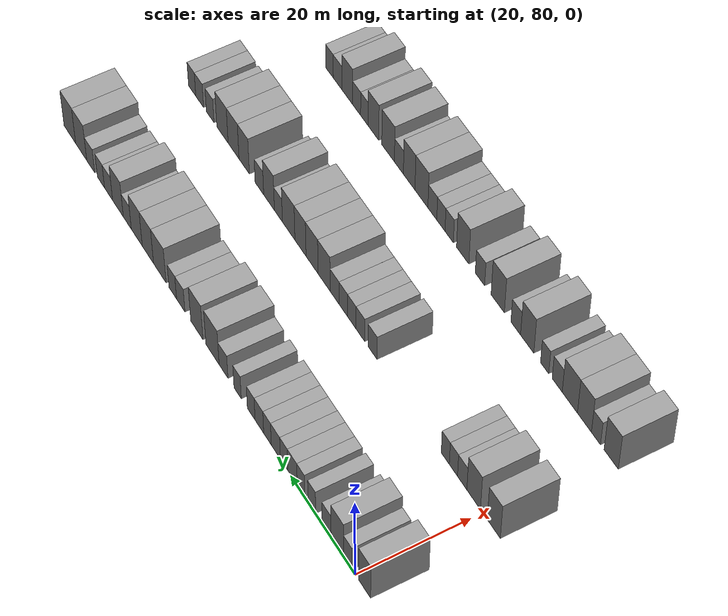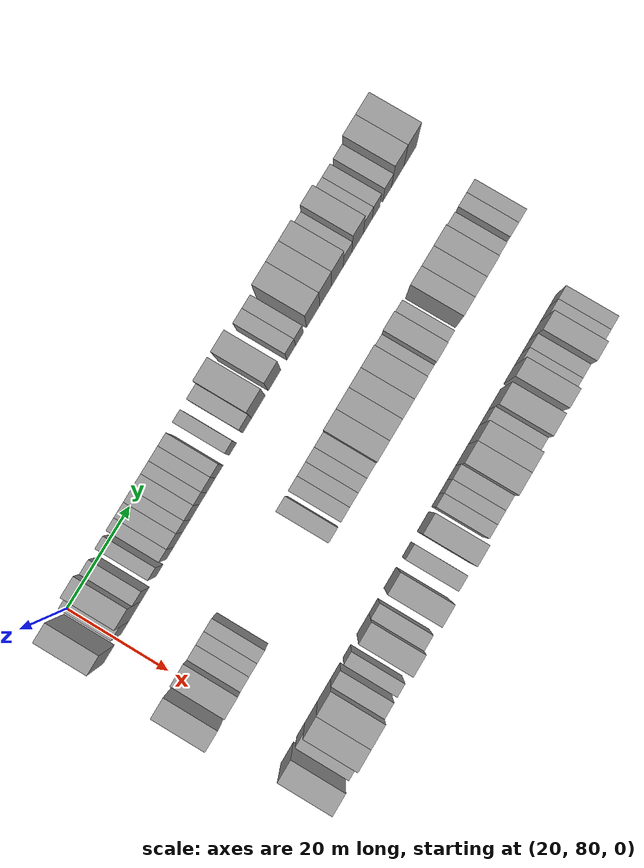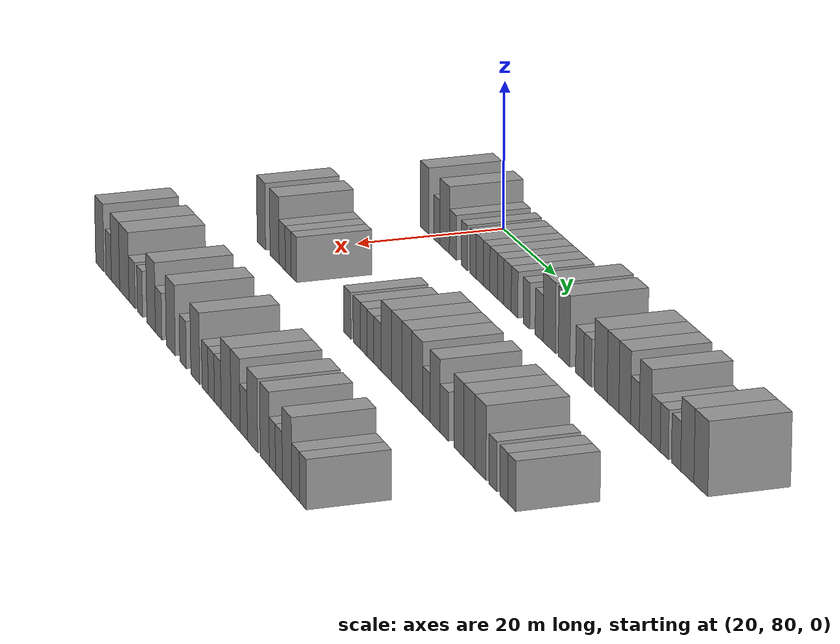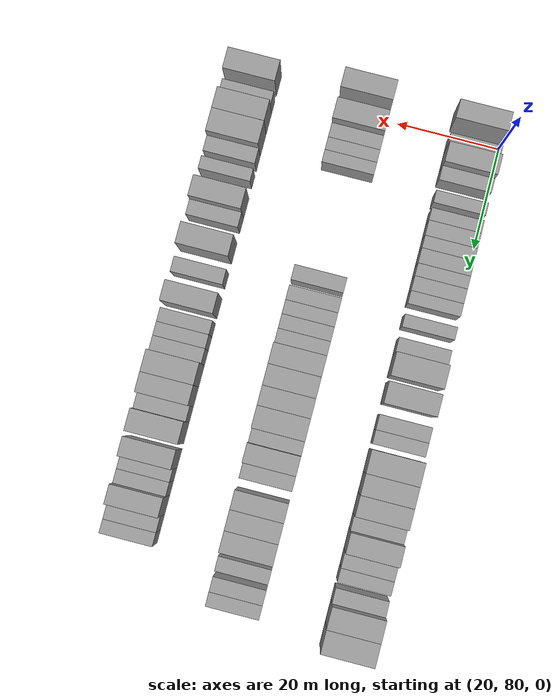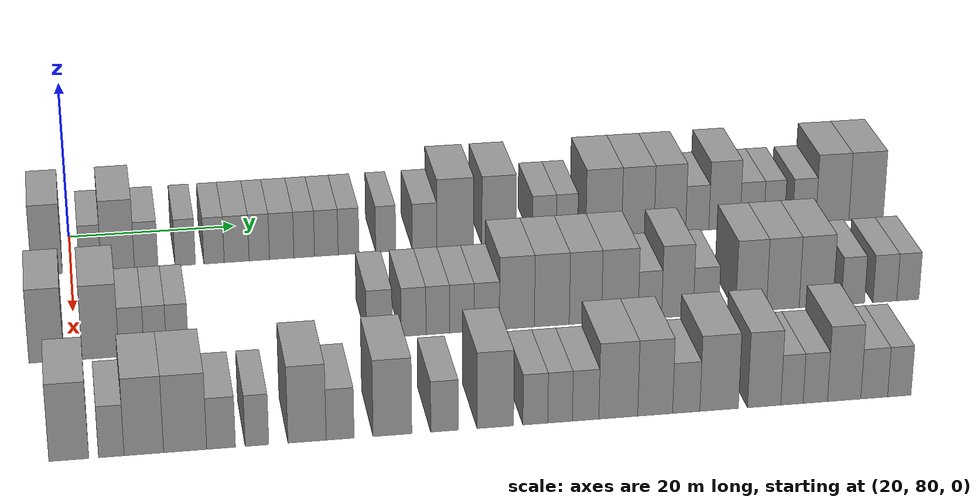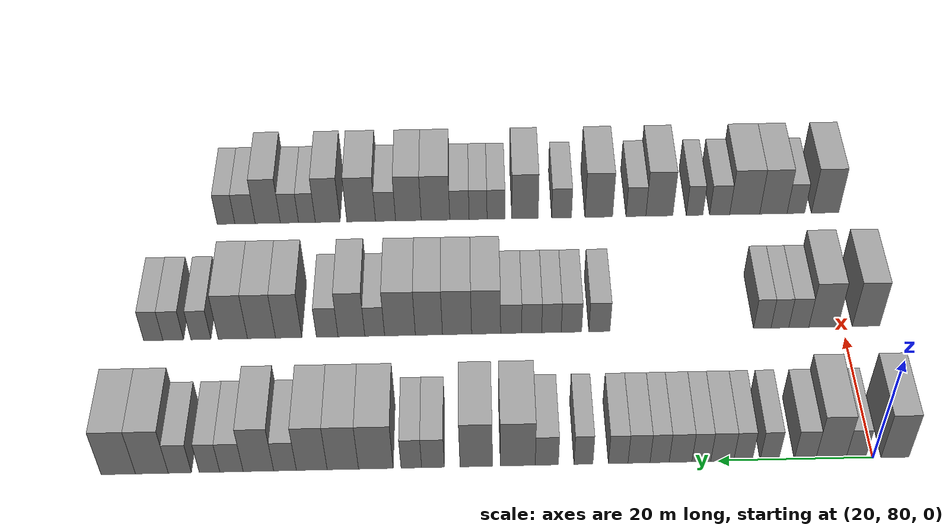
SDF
<sdf version="1.6">
 <world name="default">
  <model name="building_118">
   <static>1</static>
   <pose>25.0000 77.1916 0 0.000000 0.000000 0.000000</pose>
   <link name="link">
    <pose>0 0 4.50 0 0 0</pose>
    <collision name="collision"><geometry><box><size>10.0000 3.6108 9.0000</size></box></geometry></collision>
    <visual name="visual">
     <cast_shadows>0</cast_shadows>
     <geometry><box><size>10.0000 3.6108 9.0000</size></box></geometry>
     <material>
      <script>
       <uri>model://grey_wall/materials/scripts</uri>
       <uri>model://grey_wall/materials/textures</uri>
       <name>vrc/grey_wall</name>
      </script>
     </material>
    </visual>
   </link>
  </model>
  <model name="building_119">
   <static>1</static>
   <pose>25.0000 82.2670 0 0.000000 0.000000 0.000000</pose>
   <link name="link">
    <pose>0 0 3.00 0 0 0</pose>
    <collision name="collision"><geometry><box><size>10.0000 2.5400 6.0000</size></box></geometry></collision>
    <visual name="visual">
     <cast_shadows>0</cast_shadows>
     <geometry><box><size>10.0000 2.5400 6.0000</size></box></geometry>
     <material>
      <script>
       <uri>model://grey_wall/materials/scripts</uri>
       <uri>model://grey_wall/materials/textures</uri>
       <name>vrc/grey_wall</name>
      </script>
     </material>
    </visual>
   </link>
  </model>
  <model name="building_120">
   <static>1</static>
   <pose>25.0000 85.4828 0 0.000000 0.000000 0.000000</pose>
   <link name="link">
    <pose>0 0 4.50 0 0 0</pose>
    <collision name="collision"><geometry><box><size>10.0000 3.8915 9.0000</size></box></geometry></collision>
    <visual name="visual">
     <cast_shadows>0</cast_shadows>
     <geometry><box><size>10.0000 3.8915 9.0000</size></box></geometry>
     <material>
      <script>
       <uri>model://grey_wall/materials/scripts</uri>
       <uri>model://grey_wall/materials/textures</uri>
       <name>vrc/grey_wall</name>
      </script>
     </material>
    </visual>
   </link>
  </model>
  <model name="building_121">
   <static>1</static>
   <pose>25.0000 88.8142 0 0.000000 0.000000 0.000000</pose>
   <link name="link">
    <pose>0 0 3.00 0 0 0</pose>
    <collision name="collision"><geometry><box><size>10.0000 2.7714 6.0000</size></box></geometry></collision>
    <visual name="visual">
     <cast_shadows>0</cast_shadows>
     <geometry><box><size>10.0000 2.7714 6.0000</size></box></geometry>
     <material>
      <script>
       <uri>model://grey_wall/materials/scripts</uri>
       <uri>model://grey_wall/materials/textures</uri>
       <name>vrc/grey_wall</name>
      </script>
     </material>
    </visual>
   </link>
  </model>
  <model name="building_122">
   <static>1</static>
   <pose>25.0000 93.4054 0 0.000000 0.000000 0.000000</pose>
   <link name="link">
    <pose>0 0 3.00 0 0 0</pose>
    <collision name="collision"><geometry><box><size>10.0000 2.4109 6.0000</size></box></geometry></collision>
    <visual name="visual">
     <cast_shadows>0</cast_shadows>
     <geometry><box><size>10.0000 2.4109 6.0000</size></box></geometry>
     <material>
      <script>
       <uri>model://grey_wall/materials/scripts</uri>
       <uri>model://grey_wall/materials/textures</uri>
       <name>vrc/grey_wall</name>
      </script>
     </material>
    </visual>
   </link>
  </model>
  <model name="building_123">
   <static>1</static>
   <pose>25.0000 96.8146 0 0.000000 0.000000 0.000000</pose>
   <link name="link">
    <pose>0 0 3.00 0 0 0</pose>
    <collision name="collision"><geometry><box><size>10.0000 2.4075 6.0000</size></box></geometry></collision>
    <visual name="visual">
     <cast_shadows>0</cast_shadows>
     <geometry><box><size>10.0000 2.4075 6.0000</size></box></geometry>
     <material>
      <script>
       <uri>model://grey_wall/materials/scripts</uri>
       <uri>model://grey_wall/materials/textures</uri>
       <name>vrc/grey_wall</name>
      </script>
     </material>
    </visual>
   </link>
  </model>
  <model name="building_124">
   <static>1</static>
   <pose>25.0000 99.4954 0 0.000000 0.000000 0.000000</pose>
   <link name="link">
    <pose>0 0 3.00 0 0 0</pose>
    <collision name="collision"><geometry><box><size>10.0000 2.9541 6.0000</size></box></geometry></collision>
    <visual name="visual">
     <cast_shadows>0</cast_shadows>
     <geometry><box><size>10.0000 2.9541 6.0000</size></box></geometry>
     <material>
      <script>
       <uri>model://grey_wall/materials/scripts</uri>
       <uri>model://grey_wall/materials/textures</uri>
       <name>vrc/grey_wall</name>
      </script>
     </material>
    </visual>
   </link>
  </model>
  <model name="building_125">
   <static>1</static>
   <pose>25.0000 102.1834 0 0.000000 0.000000 0.000000</pose>
   <link name="link">
    <pose>0 0 3.00 0 0 0</pose>
    <collision name="collision"><geometry><box><size>10.0000 2.4220 6.0000</size></box></geometry></collision>
    <visual name="visual">
     <cast_shadows>0</cast_shadows>
     <geometry><box><size>10.0000 2.4220 6.0000</size></box></geometry>
     <material>
      <script>
       <uri>model://grey_wall/materials/scripts</uri>
       <uri>model://grey_wall/materials/textures</uri>
       <name>vrc/grey_wall</name>
      </script>
     </material>
    </visual>
   </link>
  </model>
  <model name="building_126">
   <static>1</static>
   <pose>25.0000 104.8587 0 0.000000 0.000000 0.000000</pose>
   <link name="link">
    <pose>0 0 3.00 0 0 0</pose>
    <collision name="collision"><geometry><box><size>10.0000 2.9284 6.0000</size></box></geometry></collision>
    <visual name="visual">
     <cast_shadows>0</cast_shadows>
     <geometry><box><size>10.0000 2.9284 6.0000</size></box></geometry>
     <material>
      <script>
       <uri>model://grey_wall/materials/scripts</uri>
       <uri>model://grey_wall/materials/textures</uri>
       <name>vrc/grey_wall</name>
      </script>
     </material>
    </visual>
   </link>
  </model>
  <model name="building_127">
   <static>1</static>
   <pose>25.0000 107.5523 0 0.000000 0.000000 0.000000</pose>
   <link name="link">
    <pose>0 0 3.00 0 0 0</pose>
    <collision name="collision"><geometry><box><size>10.0000 2.4589 6.0000</size></box></geometry></collision>
    <visual name="visual">
     <cast_shadows>0</cast_shadows>
     <geometry><box><size>10.0000 2.4589 6.0000</size></box></geometry>
     <material>
      <script>
       <uri>model://grey_wall/materials/scripts</uri>
       <uri>model://grey_wall/materials/textures</uri>
       <name>vrc/grey_wall</name>
      </script>
     </material>
    </visual>
   </link>
  </model>
  <model name="building_128">
   <static>1</static>
   <pose>25.0000 110.1940 0 0.000000 0.000000 0.000000</pose>
   <link name="link">
    <pose>0 0 3.00 0 0 0</pose>
    <collision name="collision"><geometry><box><size>10.0000 2.8244 6.0000</size></box></geometry></collision>
    <visual name="visual">
     <cast_shadows>0</cast_shadows>
     <geometry><box><size>10.0000 2.8244 6.0000</size></box></geometry>
     <material>
      <script>
       <uri>model://grey_wall/materials/scripts</uri>
       <uri>model://grey_wall/materials/textures</uri>
       <name>vrc/grey_wall</name>
      </script>
     </material>
    </visual>
   </link>
  </model>
  <model name="building_129">
   <static>1</static>
   <pose>25.0000 112.8633 0 0.000000 0.000000 0.000000</pose>
   <link name="link">
    <pose>0 0 3.00 0 0 0</pose>
    <collision name="collision"><geometry><box><size>10.0000 2.5143 6.0000</size></box></geometry></collision>
    <visual name="visual">
     <cast_shadows>0</cast_shadows>
     <geometry><box><size>10.0000 2.5143 6.0000</size></box></geometry>
     <material>
      <script>
       <uri>model://grey_wall/materials/scripts</uri>
       <uri>model://grey_wall/materials/textures</uri>
       <name>vrc/grey_wall</name>
      </script>
     </material>
    </visual>
   </link>
  </model>
  <model name="building_130">
   <static>1</static>
   <pose>25.0000 117.3321 0 0.000000 0.000000 0.000000</pose>
   <link name="link">
    <pose>0 0 3.00 0 0 0</pose>
    <collision name="collision"><geometry><box><size>10.0000 2.4233 6.0000</size></box></geometry></collision>
    <visual name="visual">
     <cast_shadows>0</cast_shadows>
     <geometry><box><size>10.0000 2.4233 6.0000</size></box></geometry>
     <material>
      <script>
       <uri>model://grey_wall/materials/scripts</uri>
       <uri>model://grey_wall/materials/textures</uri>
       <name>vrc/grey_wall</name>
      </script>
     </material>
    </visual>
   </link>
  </model>
  <model name="building_131">
   <static>1</static>
   <pose>25.0000 122.0256 0 0.000000 0.000000 0.000000</pose>
   <link name="link">
    <pose>0 0 3.00 0 0 0</pose>
    <collision name="collision"><geometry><box><size>10.0000 2.9635 6.0000</size></box></geometry></collision>
    <visual name="visual">
     <cast_shadows>0</cast_shadows>
     <geometry><box><size>10.0000 2.9635 6.0000</size></box></geometry>
     <material>
      <script>
       <uri>model://grey_wall/materials/scripts</uri>
       <uri>model://grey_wall/materials/textures</uri>
       <name>vrc/grey_wall</name>
      </script>
     </material>
    </visual>
   </link>
  </model>
  <model name="building_132">
   <static>1</static>
   <pose>25.0000 125.7455 0 0.000000 0.000000 0.000000</pose>
   <link name="link">
    <pose>0 0 4.50 0 0 0</pose>
    <collision name="collision"><geometry><box><size>10.0000 4.4764 9.0000</size></box></geometry></collision>
    <visual name="visual">
     <cast_shadows>0</cast_shadows>
     <geometry><box><size>10.0000 4.4764 9.0000</size></box></geometry>
     <material>
      <script>
       <uri>model://grey_wall/materials/scripts</uri>
       <uri>model://grey_wall/materials/textures</uri>
       <name>vrc/grey_wall</name>
      </script>
     </material>
    </visual>
   </link>
  </model>
  <model name="building_133">
   <static>1</static>
   <pose>25.0000 131.0616 0 0.000000 0.000000 0.000000</pose>
   <link name="link">
    <pose>0 0 4.50 0 0 0</pose>
    <collision name="collision"><geometry><box><size>10.0000 4.1559 9.0000</size></box></geometry></collision>
    <visual name="visual">
     <cast_shadows>0</cast_shadows>
     <geometry><box><size>10.0000 4.1559 9.0000</size></box></geometry>
     <material>
      <script>
       <uri>model://grey_wall/materials/scripts</uri>
       <uri>model://grey_wall/materials/textures</uri>
       <name>vrc/grey_wall</name>
      </script>
     </material>
    </visual>
   </link>
  </model>
  <model name="building_134">
   <static>1</static>
   <pose>25.0000 136.5964 0 0.000000 0.000000 0.000000</pose>
   <link name="link">
    <pose>0 0 3.00 0 0 0</pose>
    <collision name="collision"><geometry><box><size>10.0000 2.9136 6.0000</size></box></geometry></collision>
    <visual name="visual">
     <cast_shadows>0</cast_shadows>
     <geometry><box><size>10.0000 2.9136 6.0000</size></box></geometry>
     <material>
      <script>
       <uri>model://grey_wall/materials/scripts</uri>
       <uri>model://grey_wall/materials/textures</uri>
       <name>vrc/grey_wall</name>
      </script>
     </material>
    </visual>
   </link>
  </model>
  <model name="building_135">
   <static>1</static>
   <pose>25.0000 139.3690 0 0.000000 0.000000 0.000000</pose>
   <link name="link">
    <pose>0 0 3.00 0 0 0</pose>
    <collision name="collision"><geometry><box><size>10.0000 2.6317 6.0000</size></box></geometry></collision>
    <visual name="visual">
     <cast_shadows>0</cast_shadows>
     <geometry><box><size>10.0000 2.6317 6.0000</size></box></geometry>
     <material>
      <script>
       <uri>model://grey_wall/materials/scripts</uri>
       <uri>model://grey_wall/materials/textures</uri>
       <name>vrc/grey_wall</name>
      </script>
     </material>
    </visual>
   </link>
  </model>
  <model name="building_136">
   <static>1</static>
   <pose>25.0000 143.9018 0 0.000000 0.000000 0.000000</pose>
   <link name="link">
    <pose>0 0 4.50 0 0 0</pose>
    <collision name="collision"><geometry><box><size>10.0000 4.4340 9.0000</size></box></geometry></collision>
    <visual name="visual">
     <cast_shadows>0</cast_shadows>
     <geometry><box><size>10.0000 4.4340 9.0000</size></box></geometry>
     <material>
      <script>
       <uri>model://grey_wall/materials/scripts</uri>
       <uri>model://grey_wall/materials/textures</uri>
       <name>vrc/grey_wall</name>
      </script>
     </material>
    </visual>
   </link>
  </model>
  <model name="building_137">
   <static>1</static>
   <pose>25.0000 148.1171 0 0.000000 0.000000 0.000000</pose>
   <link name="link">
    <pose>0 0 4.50 0 0 0</pose>
    <collision name="collision"><geometry><box><size>10.0000 3.9965 9.0000</size></box></geometry></collision>
    <visual name="visual">
     <cast_shadows>0</cast_shadows>
     <geometry><box><size>10.0000 3.9965 9.0000</size></box></geometry>
     <material>
      <script>
       <uri>model://grey_wall/materials/scripts</uri>
       <uri>model://grey_wall/materials/textures</uri>
       <name>vrc/grey_wall</name>
      </script>
     </material>
    </visual>
   </link>
  </model>
  <model name="building_138">
   <static>1</static>
   <pose>25.0000 152.0803 0 0.000000 0.000000 0.000000</pose>
   <link name="link">
    <pose>0 0 4.50 0 0 0</pose>
    <collision name="collision"><geometry><box><size>10.0000 3.9300 9.0000</size></box></geometry></collision>
    <visual name="visual">
     <cast_shadows>0</cast_shadows>
     <geometry><box><size>10.0000 3.9300 9.0000</size></box></geometry>
     <material>
      <script>
       <uri>model://grey_wall/materials/scripts</uri>
       <uri>model://grey_wall/materials/textures</uri>
       <name>vrc/grey_wall</name>
      </script>
     </material>
    </visual>
   </link>
  </model>
  <model name="building_139">
   <static>1</static>
   <pose>25.0000 155.4895 0 0.000000 0.000000 0.000000</pose>
   <link name="link">
    <pose>0 0 3.00 0 0 0</pose>
    <collision name="collision"><geometry><box><size>10.0000 2.8884 6.0000</size></box></geometry></collision>
    <visual name="visual">
     <cast_shadows>0</cast_shadows>
     <geometry><box><size>10.0000 2.8884 6.0000</size></box></geometry>
     <material>
      <script>
       <uri>model://grey_wall/materials/scripts</uri>
       <uri>model://grey_wall/materials/textures</uri>
       <name>vrc/grey_wall</name>
      </script>
     </material>
    </visual>
   </link>
  </model>
  <model name="building_140">
   <static>1</static>
   <pose>25.0000 158.8769 0 0.000000 0.000000 0.000000</pose>
   <link name="link">
    <pose>0 0 4.50 0 0 0</pose>
    <collision name="collision"><geometry><box><size>10.0000 3.8864 9.0000</size></box></geometry></collision>
    <visual name="visual">
     <cast_shadows>0</cast_shadows>
     <geometry><box><size>10.0000 3.8864 9.0000</size></box></geometry>
     <material>
      <script>
       <uri>model://grey_wall/materials/scripts</uri>
       <uri>model://grey_wall/materials/textures</uri>
       <name>vrc/grey_wall</name>
      </script>
     </material>
    </visual>
   </link>
  </model>
  <model name="building_141">
   <static>1</static>
   <pose>25.0000 162.3075 0 0.000000 0.000000 0.000000</pose>
   <link name="link">
    <pose>0 0 3.00 0 0 0</pose>
    <collision name="collision"><geometry><box><size>10.0000 2.9748 6.0000</size></box></geometry></collision>
    <visual name="visual">
     <cast_shadows>0</cast_shadows>
     <geometry><box><size>10.0000 2.9748 6.0000</size></box></geometry>
     <material>
      <script>
       <uri>model://grey_wall/materials/scripts</uri>
       <uri>model://grey_wall/materials/textures</uri>
       <name>vrc/grey_wall</name>
      </script>
     </material>
    </visual>
   </link>
  </model>
  <model name="building_142">
   <static>1</static>
   <pose>25.0000 165.1036 0 0.000000 0.000000 0.000000</pose>
   <link name="link">
    <pose>0 0 3.00 0 0 0</pose>
    <collision name="collision"><geometry><box><size>10.0000 2.6174 6.0000</size></box></geometry></collision>
    <visual name="visual">
     <cast_shadows>0</cast_shadows>
     <geometry><box><size>10.0000 2.6174 6.0000</size></box></geometry>
     <material>
      <script>
       <uri>model://grey_wall/materials/scripts</uri>
       <uri>model://grey_wall/materials/textures</uri>
       <name>vrc/grey_wall</name>
      </script>
     </material>
    </visual>
   </link>
  </model>
  <model name="building_143">
   <static>1</static>
   <pose>25.0000 168.8831 0 0.000000 0.000000 0.000000</pose>
   <link name="link">
    <pose>0 0 3.00 0 0 0</pose>
    <collision name="collision"><geometry><box><size>10.0000 2.9416 6.0000</size></box></geometry></collision>
    <visual name="visual">
     <cast_shadows>0</cast_shadows>
     <geometry><box><size>10.0000 2.9416 6.0000</size></box></geometry>
     <material>
      <script>
       <uri>model://grey_wall/materials/scripts</uri>
       <uri>model://grey_wall/materials/textures</uri>
       <name>vrc/grey_wall</name>
      </script>
     </material>
    </visual>
   </link>
  </model>
  <model name="building_144">
   <static>1</static>
   <pose>25.0000 172.4408 0 0.000000 0.000000 0.000000</pose>
   <link name="link">
    <pose>0 0 4.50 0 0 0</pose>
    <collision name="collision"><geometry><box><size>10.0000 4.1737 9.0000</size></box></geometry></collision>
    <visual name="visual">
     <cast_shadows>0</cast_shadows>
     <geometry><box><size>10.0000 4.1737 9.0000</size></box></geometry>
     <material>
      <script>
       <uri>model://grey_wall/materials/scripts</uri>
       <uri>model://grey_wall/materials/textures</uri>
       <name>vrc/grey_wall</name>
      </script>
     </material>
    </visual>
   </link>
  </model>
  <model name="building_145">
   <static>1</static>
   <pose>25.0000 176.7045 0 0.000000 0.000000 0.000000</pose>
   <link name="link">
    <pose>0 0 4.50 0 0 0</pose>
    <collision name="collision"><geometry><box><size>10.0000 4.3538 9.0000</size></box></geometry></collision>
    <visual name="visual">
     <cast_shadows>0</cast_shadows>
     <geometry><box><size>10.0000 4.3538 9.0000</size></box></geometry>
     <material>
      <script>
       <uri>model://grey_wall/materials/scripts</uri>
       <uri>model://grey_wall/materials/textures</uri>
       <name>vrc/grey_wall</name>
      </script>
     </material>
    </visual>
   </link>
  </model>
  <model name="building_305">
   <static>1</static>
   <pose>47.0000 76.7585 0 0.000000 0.000000 0.000000</pose>
   <link name="link">
    <pose>0 0 4.50 0 0 0</pose>
    <collision name="collision"><geometry><box><size>10.0000 3.8230 9.0000</size></box></geometry></collision>
    <visual name="visual">
     <cast_shadows>0</cast_shadows>
     <geometry><box><size>10.0000 3.8230 9.0000</size></box></geometry>
     <material>
      <script>
       <uri>model://grey_wall/materials/scripts</uri>
       <uri>model://grey_wall/materials/textures</uri>
       <name>vrc/grey_wall</name>
      </script>
     </material>
    </visual>
   </link>
  </model>
  <model name="building_306">
   <static>1</static>
   <pose>47.0000 82.6899 0 0.000000 0.000000 0.000000</pose>
   <link name="link">
    <pose>0 0 4.50 0 0 0</pose>
    <collision name="collision"><geometry><box><size>10.0000 4.0398 9.0000</size></box></geometry></collision>
    <visual name="visual">
     <cast_shadows>0</cast_shadows>
     <geometry><box><size>10.0000 4.0398 9.0000</size></box></geometry>
     <material>
      <script>
       <uri>model://grey_wall/materials/scripts</uri>
       <uri>model://grey_wall/materials/textures</uri>
       <name>vrc/grey_wall</name>
      </script>
     </material>
    </visual>
   </link>
  </model>
  <model name="building_307">
   <static>1</static>
   <pose>47.0000 86.1026 0 0.000000 0.000000 0.000000</pose>
   <link name="link">
    <pose>0 0 3.00 0 0 0</pose>
    <collision name="collision"><geometry><box><size>10.0000 2.7854 6.0000</size></box></geometry></collision>
    <visual name="visual">
     <cast_shadows>0</cast_shadows>
     <geometry><box><size>10.0000 2.7854 6.0000</size></box></geometry>
     <material>
      <script>
       <uri>model://grey_wall/materials/scripts</uri>
       <uri>model://grey_wall/materials/textures</uri>
       <name>vrc/grey_wall</name>
      </script>
     </material>
    </visual>
   </link>
  </model>
  <model name="building_308">
   <static>1</static>
   <pose>47.0000 88.7317 0 0.000000 0.000000 0.000000</pose>
   <link name="link">
    <pose>0 0 3.00 0 0 0</pose>
    <collision name="collision"><geometry><box><size>10.0000 2.4728 6.0000</size></box></geometry></collision>
    <visual name="visual">
     <cast_shadows>0</cast_shadows>
     <geometry><box><size>10.0000 2.4728 6.0000</size></box></geometry>
     <material>
      <script>
       <uri>model://grey_wall/materials/scripts</uri>
       <uri>model://grey_wall/materials/textures</uri>
       <name>vrc/grey_wall</name>
      </script>
     </material>
    </visual>
   </link>
  </model>
  <model name="building_309">
   <static>1</static>
   <pose>47.0000 91.1850 0 0.000000 0.000000 0.000000</pose>
   <link name="link">
    <pose>0 0 3.00 0 0 0</pose>
    <collision name="collision"><geometry><box><size>10.0000 2.4337 6.0000</size></box></geometry></collision>
    <visual name="visual">
     <cast_shadows>0</cast_shadows>
     <geometry><box><size>10.0000 2.4337 6.0000</size></box></geometry>
     <material>
      <script>
       <uri>model://grey_wall/materials/scripts</uri>
       <uri>model://grey_wall/materials/textures</uri>
       <name>vrc/grey_wall</name>
      </script>
     </material>
    </visual>
   </link>
  </model>
  <model name="building_310">
   <static>1</static>
   <pose>47.0000 113.7740 0 0.000000 0.000000 0.000000</pose>
   <link name="link">
    <pose>0 0 3.00 0 0 0</pose>
    <collision name="collision"><geometry><box><size>10.0000 2.9148 6.0000</size></box></geometry></collision>
    <visual name="visual">
     <cast_shadows>0</cast_shadows>
     <geometry><box><size>10.0000 2.9148 6.0000</size></box></geometry>
     <material>
      <script>
       <uri>model://grey_wall/materials/scripts</uri>
       <uri>model://grey_wall/materials/textures</uri>
       <name>vrc/grey_wall</name>
      </script>
     </material>
    </visual>
   </link>
  </model>
  <model name="building_311">
   <static>1</static>
   <pose>47.0000 117.6431 0 0.000000 0.000000 0.000000</pose>
   <link name="link">
    <pose>0 0 3.00 0 0 0</pose>
    <collision name="collision"><geometry><box><size>10.0000 2.8233 6.0000</size></box></geometry></collision>
    <visual name="visual">
     <cast_shadows>0</cast_shadows>
     <geometry><box><size>10.0000 2.8233 6.0000</size></box></geometry>
     <material>
      <script>
       <uri>model://grey_wall/materials/scripts</uri>
       <uri>model://grey_wall/materials/textures</uri>
       <name>vrc/grey_wall</name>
      </script>
     </material>
    </visual>
   </link>
  </model>
  <model name="building_312">
   <static>1</static>
   <pose>47.0000 120.4035 0 0.000000 0.000000 0.000000</pose>
   <link name="link">
    <pose>0 0 3.00 0 0 0</pose>
    <collision name="collision"><geometry><box><size>10.0000 2.6976 6.0000</size></box></geometry></collision>
    <visual name="visual">
     <cast_shadows>0</cast_shadows>
     <geometry><box><size>10.0000 2.6976 6.0000</size></box></geometry>
     <material>
      <script>
       <uri>model://grey_wall/materials/scripts</uri>
       <uri>model://grey_wall/materials/textures</uri>
       <name>vrc/grey_wall</name>
      </script>
     </material>
    </visual>
   </link>
  </model>
  <model name="building_313">
   <static>1</static>
   <pose>47.0000 123.1365 0 0.000000 0.000000 0.000000</pose>
   <link name="link">
    <pose>0 0 3.00 0 0 0</pose>
    <collision name="collision"><geometry><box><size>10.0000 2.7683 6.0000</size></box></geometry></collision>
    <visual name="visual">
     <cast_shadows>0</cast_shadows>
     <geometry><box><size>10.0000 2.7683 6.0000</size></box></geometry>
     <material>
      <script>
       <uri>model://grey_wall/materials/scripts</uri>
       <uri>model://grey_wall/materials/textures</uri>
       <name>vrc/grey_wall</name>
      </script>
     </material>
    </visual>
   </link>
  </model>
  <model name="building_314">
   <static>1</static>
   <pose>47.0000 125.9734 0 0.000000 0.000000 0.000000</pose>
   <link name="link">
    <pose>0 0 3.00 0 0 0</pose>
    <collision name="collision"><geometry><box><size>10.0000 2.9054 6.0000</size></box></geometry></collision>
    <visual name="visual">
     <cast_shadows>0</cast_shadows>
     <geometry><box><size>10.0000 2.9054 6.0000</size></box></geometry>
     <material>
      <script>
       <uri>model://grey_wall/materials/scripts</uri>
       <uri>model://grey_wall/materials/textures</uri>
       <name>vrc/grey_wall</name>
      </script>
     </material>
    </visual>
   </link>
  </model>
  <model name="building_315">
   <static>1</static>
   <pose>47.0000 129.4264 0 0.000000 0.000000 0.000000</pose>
   <link name="link">
    <pose>0 0 4.50 0 0 0</pose>
    <collision name="collision"><geometry><box><size>10.0000 4.0007 9.0000</size></box></geometry></collision>
    <visual name="visual">
     <cast_shadows>0</cast_shadows>
     <geometry><box><size>10.0000 4.0007 9.0000</size></box></geometry>
     <material>
      <script>
       <uri>model://grey_wall/materials/scripts</uri>
       <uri>model://grey_wall/materials/textures</uri>
       <name>vrc/grey_wall</name>
      </script>
     </material>
    </visual>
   </link>
  </model>
  <model name="building_316">
   <static>1</static>
   <pose>47.0000 133.4358 0 0.000000 0.000000 0.000000</pose>
   <link name="link">
    <pose>0 0 4.50 0 0 0</pose>
    <collision name="collision"><geometry><box><size>10.0000 4.0182 9.0000</size></box></geometry></collision>
    <visual name="visual">
     <cast_shadows>0</cast_shadows>
     <geometry><box><size>10.0000 4.0182 9.0000</size></box></geometry>
     <material>
      <script>
       <uri>model://grey_wall/materials/scripts</uri>
       <uri>model://grey_wall/materials/textures</uri>
       <name>vrc/grey_wall</name>
      </script>
     </material>
    </visual>
   </link>
  </model>
  <model name="building_317">
   <static>1</static>
   <pose>47.0000 137.3122 0 0.000000 0.000000 0.000000</pose>
   <link name="link">
    <pose>0 0 4.50 0 0 0</pose>
    <collision name="collision"><geometry><box><size>10.0000 3.7347 9.0000</size></box></geometry></collision>
    <visual name="visual">
     <cast_shadows>0</cast_shadows>
     <geometry><box><size>10.0000 3.7347 9.0000</size></box></geometry>
     <material>
      <script>
       <uri>model://grey_wall/materials/scripts</uri>
       <uri>model://grey_wall/materials/textures</uri>
       <name>vrc/grey_wall</name>
      </script>
     </material>
    </visual>
   </link>
  </model>
  <model name="building_318">
   <static>1</static>
   <pose>47.0000 141.2990 0 0.000000 0.000000 0.000000</pose>
   <link name="link">
    <pose>0 0 4.50 0 0 0</pose>
    <collision name="collision"><geometry><box><size>10.0000 4.2389 9.0000</size></box></geometry></collision>
    <visual name="visual">
     <cast_shadows>0</cast_shadows>
     <geometry><box><size>10.0000 4.2389 9.0000</size></box></geometry>
     <material>
      <script>
       <uri>model://grey_wall/materials/scripts</uri>
       <uri>model://grey_wall/materials/textures</uri>
       <name>vrc/grey_wall</name>
      </script>
     </material>
    </visual>
   </link>
  </model>
  <model name="building_319">
   <static>1</static>
   <pose>47.0000 144.7791 0 0.000000 0.000000 0.000000</pose>
   <link name="link">
    <pose>0 0 3.00 0 0 0</pose>
    <collision name="collision"><geometry><box><size>10.0000 2.7213 6.0000</size></box></geometry></collision>
    <visual name="visual">
     <cast_shadows>0</cast_shadows>
     <geometry><box><size>10.0000 2.7213 6.0000</size></box></geometry>
     <material>
      <script>
       <uri>model://grey_wall/materials/scripts</uri>
       <uri>model://grey_wall/materials/textures</uri>
       <name>vrc/grey_wall</name>
      </script>
     </material>
    </visual>
   </link>
  </model>
  <model name="building_320">
   <static>1</static>
   <pose>47.0000 147.9834 0 0.000000 0.000000 0.000000</pose>
   <link name="link">
    <pose>0 0 4.50 0 0 0</pose>
    <collision name="collision"><geometry><box><size>10.0000 3.6873 9.0000</size></box></geometry></collision>
    <visual name="visual">
     <cast_shadows>0</cast_shadows>
     <geometry><box><size>10.0000 3.6873 9.0000</size></box></geometry>
     <material>
      <script>
       <uri>model://grey_wall/materials/scripts</uri>
       <uri>model://grey_wall/materials/textures</uri>
       <name>vrc/grey_wall</name>
      </script>
     </material>
    </visual>
   </link>
  </model>
  <model name="building_321">
   <static>1</static>
   <pose>47.0000 151.3126 0 0.000000 0.000000 0.000000</pose>
   <link name="link">
    <pose>0 0 3.00 0 0 0</pose>
    <collision name="collision"><geometry><box><size>10.0000 2.9712 6.0000</size></box></geometry></collision>
    <visual name="visual">
     <cast_shadows>0</cast_shadows>
     <geometry><box><size>10.0000 2.9712 6.0000</size></box></geometry>
     <material>
      <script>
       <uri>model://grey_wall/materials/scripts</uri>
       <uri>model://grey_wall/materials/textures</uri>
       <name>vrc/grey_wall</name>
      </script>
     </material>
    </visual>
   </link>
  </model>
  <model name="building_322">
   <static>1</static>
   <pose>47.0000 156.6080 0 0.000000 0.000000 0.000000</pose>
   <link name="link">
    <pose>0 0 4.50 0 0 0</pose>
    <collision name="collision"><geometry><box><size>10.0000 3.6196 9.0000</size></box></geometry></collision>
    <visual name="visual">
     <cast_shadows>0</cast_shadows>
     <geometry><box><size>10.0000 3.6196 9.0000</size></box></geometry>
     <material>
      <script>
       <uri>model://grey_wall/materials/scripts</uri>
       <uri>model://grey_wall/materials/textures</uri>
       <name>vrc/grey_wall</name>
      </script>
     </material>
    </visual>
   </link>
  </model>
  <model name="building_323">
   <static>1</static>
   <pose>47.0000 160.3450 0 0.000000 0.000000 0.000000</pose>
   <link name="link">
    <pose>0 0 4.50 0 0 0</pose>
    <collision name="collision"><geometry><box><size>10.0000 3.8543 9.0000</size></box></geometry></collision>
    <visual name="visual">
     <cast_shadows>0</cast_shadows>
     <geometry><box><size>10.0000 3.8543 9.0000</size></box></geometry>
     <material>
      <script>
       <uri>model://grey_wall/materials/scripts</uri>
       <uri>model://grey_wall/materials/textures</uri>
       <name>vrc/grey_wall</name>
      </script>
     </material>
    </visual>
   </link>
  </model>
  <model name="building_324">
   <static>1</static>
   <pose>47.0000 164.2804 0 0.000000 0.000000 0.000000</pose>
   <link name="link">
    <pose>0 0 4.50 0 0 0</pose>
    <collision name="collision"><geometry><box><size>10.0000 4.0166 9.0000</size></box></geometry></collision>
    <visual name="visual">
     <cast_shadows>0</cast_shadows>
     <geometry><box><size>10.0000 4.0166 9.0000</size></box></geometry>
     <material>
      <script>
       <uri>model://grey_wall/materials/scripts</uri>
       <uri>model://grey_wall/materials/textures</uri>
       <name>vrc/grey_wall</name>
      </script>
     </material>
    </visual>
   </link>
  </model>
  <model name="building_325">
   <static>1</static>
   <pose>47.0000 168.6607 0 0.000000 0.000000 0.000000</pose>
   <link name="link">
    <pose>0 0 3.00 0 0 0</pose>
    <collision name="collision"><geometry><box><size>10.0000 2.7439 6.0000</size></box></geometry></collision>
    <visual name="visual">
     <cast_shadows>0</cast_shadows>
     <geometry><box><size>10.0000 2.7439 6.0000</size></box></geometry>
     <material>
      <script>
       <uri>model://grey_wall/materials/scripts</uri>
       <uri>model://grey_wall/materials/textures</uri>
       <name>vrc/grey_wall</name>
      </script>
     </material>
    </visual>
   </link>
  </model>
  <model name="building_326">
   <static>1</static>
   <pose>47.0000 172.4531 0 0.000000 0.000000 0.000000</pose>
   <link name="link">
    <pose>0 0 3.00 0 0 0</pose>
    <collision name="collision"><geometry><box><size>10.0000 2.8409 6.0000</size></box></geometry></collision>
    <visual name="visual">
     <cast_shadows>0</cast_shadows>
     <geometry><box><size>10.0000 2.8409 6.0000</size></box></geometry>
     <material>
      <script>
       <uri>model://grey_wall/materials/scripts</uri>
       <uri>model://grey_wall/materials/textures</uri>
       <name>vrc/grey_wall</name>
      </script>
     </material>
    </visual>
   </link>
  </model>
  <model name="building_327">
   <static>1</static>
   <pose>47.0000 175.1893 0 0.000000 0.000000 0.000000</pose>
   <link name="link">
    <pose>0 0 3.00 0 0 0</pose>
    <collision name="collision"><geometry><box><size>10.0000 2.6314 6.0000</size></box></geometry></collision>
    <visual name="visual">
     <cast_shadows>0</cast_shadows>
     <geometry><box><size>10.0000 2.6314 6.0000</size></box></geometry>
     <material>
      <script>
       <uri>model://grey_wall/materials/scripts</uri>
       <uri>model://grey_wall/materials/textures</uri>
       <name>vrc/grey_wall</name>
      </script>
     </material>
    </visual>
   </link>
  </model>
  <model name="building_497">
   <static>1</static>
   <pose>69.0000 78.6778 0 0.000000 0.000000 0.000000</pose>
   <link name="link">
    <pose>0 0 4.50 0 0 0</pose>
    <collision name="collision"><geometry><box><size>10.0000 4.0840 9.0000</size></box></geometry></collision>
    <visual name="visual">
     <cast_shadows>0</cast_shadows>
     <geometry><box><size>10.0000 4.0840 9.0000</size></box></geometry>
     <material>
      <script>
       <uri>model://grey_wall/materials/scripts</uri>
       <uri>model://grey_wall/materials/textures</uri>
       <name>vrc/grey_wall</name>
      </script>
     </material>
    </visual>
   </link>
  </model>
  <model name="building_498">
   <static>1</static>
   <pose>69.0000 83.0371 0 0.000000 0.000000 0.000000</pose>
   <link name="link">
    <pose>0 0 3.00 0 0 0</pose>
    <collision name="collision"><geometry><box><size>10.0000 2.6346 6.0000</size></box></geometry></collision>
    <visual name="visual">
     <cast_shadows>0</cast_shadows>
     <geometry><box><size>10.0000 2.6346 6.0000</size></box></geometry>
     <material>
      <script>
       <uri>model://grey_wall/materials/scripts</uri>
       <uri>model://grey_wall/materials/textures</uri>
       <name>vrc/grey_wall</name>
      </script>
     </material>
    </visual>
   </link>
  </model>
  <model name="building_499">
   <static>1</static>
   <pose>69.0000 86.3886 0 0.000000 0.000000 0.000000</pose>
   <link name="link">
    <pose>0 0 4.50 0 0 0</pose>
    <collision name="collision"><geometry><box><size>10.0000 4.0684 9.0000</size></box></geometry></collision>
    <visual name="visual">
     <cast_shadows>0</cast_shadows>
     <geometry><box><size>10.0000 4.0684 9.0000</size></box></geometry>
     <material>
      <script>
       <uri>model://grey_wall/materials/scripts</uri>
       <uri>model://grey_wall/materials/textures</uri>
       <name>vrc/grey_wall</name>
      </script>
     </material>
    </visual>
   </link>
  </model>
  <model name="building_500">
   <static>1</static>
   <pose>69.0000 90.6580 0 0.000000 0.000000 0.000000</pose>
   <link name="link">
    <pose>0 0 4.50 0 0 0</pose>
    <collision name="collision"><geometry><box><size>10.0000 4.4703 9.0000</size></box></geometry></collision>
    <visual name="visual">
     <cast_shadows>0</cast_shadows>
     <geometry><box><size>10.0000 4.4703 9.0000</size></box></geometry>
     <material>
      <script>
       <uri>model://grey_wall/materials/scripts</uri>
       <uri>model://grey_wall/materials/textures</uri>
       <name>vrc/grey_wall</name>
      </script>
     </material>
    </visual>
   </link>
  </model>
  <model name="building_501">
   <static>1</static>
   <pose>69.0000 94.3881 0 0.000000 0.000000 0.000000</pose>
   <link name="link">
    <pose>0 0 3.00 0 0 0</pose>
    <collision name="collision"><geometry><box><size>10.0000 2.9900 6.0000</size></box></geometry></collision>
    <visual name="visual">
     <cast_shadows>0</cast_shadows>
     <geometry><box><size>10.0000 2.9900 6.0000</size></box></geometry>
     <material>
      <script>
       <uri>model://grey_wall/materials/scripts</uri>
       <uri>model://grey_wall/materials/textures</uri>
       <name>vrc/grey_wall</name>
      </script>
     </material>
    </visual>
   </link>
  </model>
  <model name="building_502">
   <static>1</static>
   <pose>69.0000 98.1186 0 0.000000 0.000000 0.000000</pose>
   <link name="link">
    <pose>0 0 3.00 0 0 0</pose>
    <collision name="collision"><geometry><box><size>10.0000 2.4710 6.0000</size></box></geometry></collision>
    <visual name="visual">
     <cast_shadows>0</cast_shadows>
     <geometry><box><size>10.0000 2.4710 6.0000</size></box></geometry>
     <material>
      <script>
       <uri>model://grey_wall/materials/scripts</uri>
       <uri>model://grey_wall/materials/textures</uri>
       <name>vrc/grey_wall</name>
      </script>
     </material>
    </visual>
   </link>
  </model>
  <model name="building_503">
   <static>1</static>
   <pose>69.0000 103.3602 0 0.000000 0.000000 0.000000</pose>
   <link name="link">
    <pose>0 0 4.50 0 0 0</pose>
    <collision name="collision"><geometry><box><size>10.0000 4.0122 9.0000</size></box></geometry></collision>
    <visual name="visual">
     <cast_shadows>0</cast_shadows>
     <geometry><box><size>10.0000 4.0122 9.0000</size></box></geometry>
     <material>
      <script>
       <uri>model://grey_wall/materials/scripts</uri>
       <uri>model://grey_wall/materials/textures</uri>
       <name>vrc/grey_wall</name>
      </script>
     </material>
    </visual>
   </link>
  </model>
  <model name="building_504">
   <static>1</static>
   <pose>69.0000 106.8369 0 0.000000 0.000000 0.000000</pose>
   <link name="link">
    <pose>0 0 3.00 0 0 0</pose>
    <collision name="collision"><geometry><box><size>10.0000 2.9411 6.0000</size></box></geometry></collision>
    <visual name="visual">
     <cast_shadows>0</cast_shadows>
     <geometry><box><size>10.0000 2.9411 6.0000</size></box></geometry>
     <material>
      <script>
       <uri>model://grey_wall/materials/scripts</uri>
       <uri>model://grey_wall/materials/textures</uri>
       <name>vrc/grey_wall</name>
      </script>
     </material>
    </visual>
   </link>
  </model>
  <model name="building_505">
   <static>1</static>
   <pose>69.0000 112.3568 0 0.000000 0.000000 0.000000</pose>
   <link name="link">
    <pose>0 0 4.50 0 0 0</pose>
    <collision name="collision"><geometry><box><size>10.0000 4.0987 9.0000</size></box></geometry></collision>
    <visual name="visual">
     <cast_shadows>0</cast_shadows>
     <geometry><box><size>10.0000 4.0987 9.0000</size></box></geometry>
     <material>
      <script>
       <uri>model://grey_wall/materials/scripts</uri>
       <uri>model://grey_wall/materials/textures</uri>
       <name>vrc/grey_wall</name>
      </script>
     </material>
    </visual>
   </link>
  </model>
  <model name="building_506">
   <static>1</static>
   <pose>69.0000 117.8747 0 0.000000 0.000000 0.000000</pose>
   <link name="link">
    <pose>0 0 3.00 0 0 0</pose>
    <collision name="collision"><geometry><box><size>10.0000 2.9372 6.0000</size></box></geometry></collision>
    <visual name="visual">
     <cast_shadows>0</cast_shadows>
     <geometry><box><size>10.0000 2.9372 6.0000</size></box></geometry>
     <material>
      <script>
       <uri>model://grey_wall/materials/scripts</uri>
       <uri>model://grey_wall/materials/textures</uri>
       <name>vrc/grey_wall</name>
      </script>
     </material>
    </visual>
   </link>
  </model>
  <model name="building_507">
   <static>1</static>
   <pose>69.0000 123.2954 0 0.000000 0.000000 0.000000</pose>
   <link name="link">
    <pose>0 0 4.50 0 0 0</pose>
    <collision name="collision"><geometry><box><size>10.0000 3.9042 9.0000</size></box></geometry></collision>
    <visual name="visual">
     <cast_shadows>0</cast_shadows>
     <geometry><box><size>10.0000 3.9042 9.0000</size></box></geometry>
     <material>
      <script>
       <uri>model://grey_wall/materials/scripts</uri>
       <uri>model://grey_wall/materials/textures</uri>
       <name>vrc/grey_wall</name>
      </script>
     </material>
    </visual>
   </link>
  </model>
  <model name="building_508">
   <static>1</static>
   <pose>69.0000 127.5794 0 0.000000 0.000000 0.000000</pose>
   <link name="link">
    <pose>0 0 3.00 0 0 0</pose>
    <collision name="collision"><geometry><box><size>10.0000 2.6639 6.0000</size></box></geometry></collision>
    <visual name="visual">
     <cast_shadows>0</cast_shadows>
     <geometry><box><size>10.0000 2.6639 6.0000</size></box></geometry>
     <material>
      <script>
       <uri>model://grey_wall/materials/scripts</uri>
       <uri>model://grey_wall/materials/textures</uri>
       <name>vrc/grey_wall</name>
      </script>
     </material>
    </visual>
   </link>
  </model>
  <model name="building_509">
   <static>1</static>
   <pose>69.0000 130.2357 0 0.000000 0.000000 0.000000</pose>
   <link name="link">
    <pose>0 0 3.00 0 0 0</pose>
    <collision name="collision"><geometry><box><size>10.0000 2.6485 6.0000</size></box></geometry></collision>
    <visual name="visual">
     <cast_shadows>0</cast_shadows>
     <geometry><box><size>10.0000 2.6485 6.0000</size></box></geometry>
     <material>
      <script>
       <uri>model://grey_wall/materials/scripts</uri>
       <uri>model://grey_wall/materials/textures</uri>
       <name>vrc/grey_wall</name>
      </script>
     </material>
    </visual>
   </link>
  </model>
  <model name="building_510">
   <static>1</static>
   <pose>69.0000 132.9906 0 0.000000 0.000000 0.000000</pose>
   <link name="link">
    <pose>0 0 3.00 0 0 0</pose>
    <collision name="collision"><geometry><box><size>10.0000 2.8613 6.0000</size></box></geometry></collision>
    <visual name="visual">
     <cast_shadows>0</cast_shadows>
     <geometry><box><size>10.0000 2.8613 6.0000</size></box></geometry>
     <material>
      <script>
       <uri>model://grey_wall/materials/scripts</uri>
       <uri>model://grey_wall/materials/textures</uri>
       <name>vrc/grey_wall</name>
      </script>
     </material>
    </visual>
   </link>
  </model>
  <model name="building_511">
   <static>1</static>
   <pose>69.0000 136.5269 0 0.000000 0.000000 0.000000</pose>
   <link name="link">
    <pose>0 0 4.50 0 0 0</pose>
    <collision name="collision"><geometry><box><size>10.0000 4.2112 9.0000</size></box></geometry></collision>
    <visual name="visual">
     <cast_shadows>0</cast_shadows>
     <geometry><box><size>10.0000 4.2112 9.0000</size></box></geometry>
     <material>
      <script>
       <uri>model://grey_wall/materials/scripts</uri>
       <uri>model://grey_wall/materials/textures</uri>
       <name>vrc/grey_wall</name>
      </script>
     </material>
    </visual>
   </link>
  </model>
  <model name="building_512">
   <static>1</static>
   <pose>69.0000 140.5304 0 0.000000 0.000000 0.000000</pose>
   <link name="link">
    <pose>0 0 4.50 0 0 0</pose>
    <collision name="collision"><geometry><box><size>10.0000 3.7958 9.0000</size></box></geometry></collision>
    <visual name="visual">
     <cast_shadows>0</cast_shadows>
     <geometry><box><size>10.0000 3.7958 9.0000</size></box></geometry>
     <material>
      <script>
       <uri>model://grey_wall/materials/scripts</uri>
       <uri>model://grey_wall/materials/textures</uri>
       <name>vrc/grey_wall</name>
      </script>
     </material>
    </visual>
   </link>
  </model>
  <model name="building_513">
   <static>1</static>
   <pose>69.0000 143.9114 0 0.000000 0.000000 0.000000</pose>
   <link name="link">
    <pose>0 0 3.00 0 0 0</pose>
    <collision name="collision"><geometry><box><size>10.0000 2.9663 6.0000</size></box></geometry></collision>
    <visual name="visual">
     <cast_shadows>0</cast_shadows>
     <geometry><box><size>10.0000 2.9663 6.0000</size></box></geometry>
     <material>
      <script>
       <uri>model://grey_wall/materials/scripts</uri>
       <uri>model://grey_wall/materials/textures</uri>
       <name>vrc/grey_wall</name>
      </script>
     </material>
    </visual>
   </link>
  </model>
  <model name="building_514">
   <static>1</static>
   <pose>69.0000 147.5056 0 0.000000 0.000000 0.000000</pose>
   <link name="link">
    <pose>0 0 4.50 0 0 0</pose>
    <collision name="collision"><geometry><box><size>10.0000 4.2221 9.0000</size></box></geometry></collision>
    <visual name="visual">
     <cast_shadows>0</cast_shadows>
     <geometry><box><size>10.0000 4.2221 9.0000</size></box></geometry>
     <material>
      <script>
       <uri>model://grey_wall/materials/scripts</uri>
       <uri>model://grey_wall/materials/textures</uri>
       <name>vrc/grey_wall</name>
      </script>
     </material>
    </visual>
   </link>
  </model>
  <model name="building_515">
   <static>1</static>
   <pose>69.0000 152.4471 0 0.000000 0.000000 0.000000</pose>
   <link name="link">
    <pose>0 0 4.50 0 0 0</pose>
    <collision name="collision"><geometry><box><size>10.0000 3.6609 9.0000</size></box></geometry></collision>
    <visual name="visual">
     <cast_shadows>0</cast_shadows>
     <geometry><box><size>10.0000 3.6609 9.0000</size></box></geometry>
     <material>
      <script>
       <uri>model://grey_wall/materials/scripts</uri>
       <uri>model://grey_wall/materials/textures</uri>
       <name>vrc/grey_wall</name>
      </script>
     </material>
    </visual>
   </link>
  </model>
  <model name="building_516">
   <static>1</static>
   <pose>69.0000 155.5113 0 0.000000 0.000000 0.000000</pose>
   <link name="link">
    <pose>0 0 3.00 0 0 0</pose>
    <collision name="collision"><geometry><box><size>10.0000 2.4676 6.0000</size></box></geometry></collision>
    <visual name="visual">
     <cast_shadows>0</cast_shadows>
     <geometry><box><size>10.0000 2.4676 6.0000</size></box></geometry>
     <material>
      <script>
       <uri>model://grey_wall/materials/scripts</uri>
       <uri>model://grey_wall/materials/textures</uri>
       <name>vrc/grey_wall</name>
      </script>
     </material>
    </visual>
   </link>
  </model>
  <model name="building_517">
   <static>1</static>
   <pose>69.0000 158.0906 0 0.000000 0.000000 0.000000</pose>
   <link name="link">
    <pose>0 0 3.00 0 0 0</pose>
    <collision name="collision"><geometry><box><size>10.0000 2.6910 6.0000</size></box></geometry></collision>
    <visual name="visual">
     <cast_shadows>0</cast_shadows>
     <geometry><box><size>10.0000 2.6910 6.0000</size></box></geometry>
     <material>
      <script>
       <uri>model://grey_wall/materials/scripts</uri>
       <uri>model://grey_wall/materials/textures</uri>
       <name>vrc/grey_wall</name>
      </script>
     </material>
    </visual>
   </link>
  </model>
  <model name="building_518">
   <static>1</static>
   <pose>69.0000 161.2831 0 0.000000 0.000000 0.000000</pose>
   <link name="link">
    <pose>0 0 4.50 0 0 0</pose>
    <collision name="collision"><geometry><box><size>10.0000 3.6939 9.0000</size></box></geometry></collision>
    <visual name="visual">
     <cast_shadows>0</cast_shadows>
     <geometry><box><size>10.0000 3.6939 9.0000</size></box></geometry>
     <material>
      <script>
       <uri>model://grey_wall/materials/scripts</uri>
       <uri>model://grey_wall/materials/textures</uri>
       <name>vrc/grey_wall</name>
      </script>
     </material>
    </visual>
   </link>
  </model>
  <model name="building_519">
   <static>1</static>
   <pose>69.0000 164.6261 0 0.000000 0.000000 0.000000</pose>
   <link name="link">
    <pose>0 0 3.00 0 0 0</pose>
    <collision name="collision"><geometry><box><size>10.0000 2.9921 6.0000</size></box></geometry></collision>
    <visual name="visual">
     <cast_shadows>0</cast_shadows>
     <geometry><box><size>10.0000 2.9921 6.0000</size></box></geometry>
     <material>
      <script>
       <uri>model://grey_wall/materials/scripts</uri>
       <uri>model://grey_wall/materials/textures</uri>
       <name>vrc/grey_wall</name>
      </script>
     </material>
    </visual>
   </link>
  </model>
  <model name="building_520">
   <static>1</static>
   <pose>69.0000 167.4211 0 0.000000 0.000000 0.000000</pose>
   <link name="link">
    <pose>0 0 3.00 0 0 0</pose>
    <collision name="collision"><geometry><box><size>10.0000 2.5978 6.0000</size></box></geometry></collision>
    <visual name="visual">
     <cast_shadows>0</cast_shadows>
     <geometry><box><size>10.0000 2.5978 6.0000</size></box></geometry>
     <material>
      <script>
       <uri>model://grey_wall/materials/scripts</uri>
       <uri>model://grey_wall/materials/textures</uri>
       <name>vrc/grey_wall</name>
      </script>
     </material>
    </visual>
   </link>
  </model>
 </world>
</sdf>
